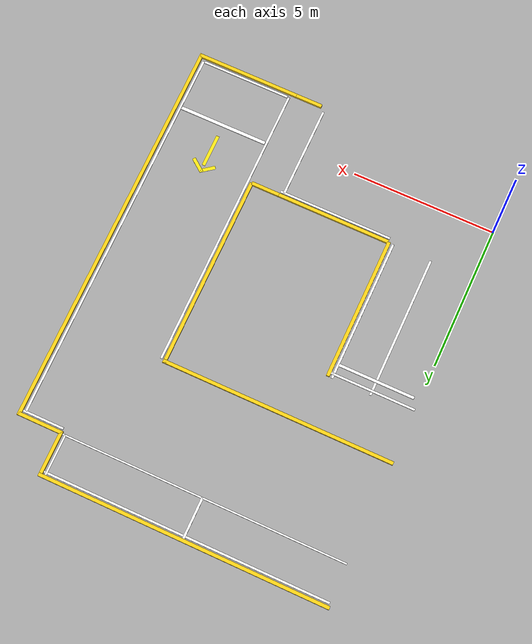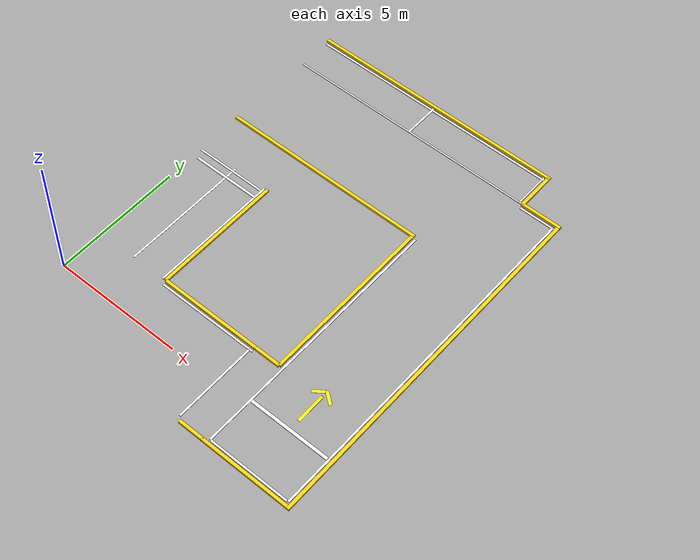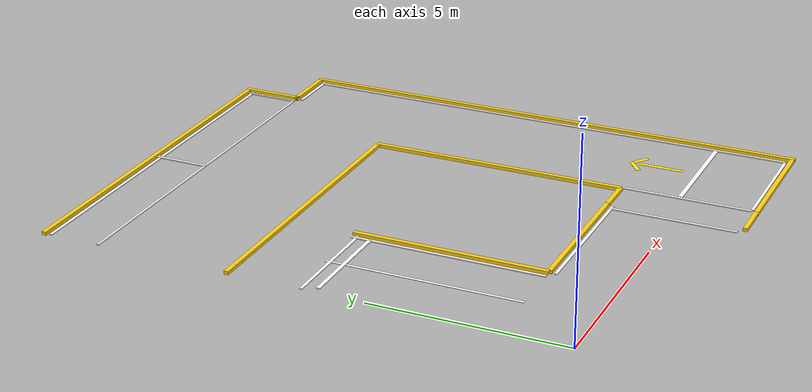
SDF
<sdf version="1.10">
 <world name="t_parking_exam">
  <model name="main_lane_upper_east_boundary">
   <static>true</static>
   <pose>5.015 1.75 0.045 0 0 0</pose>
   <link name="boundary_link">
    <collision name="boundary_collision"><geometry><box><size>3.97 0.12 0.090</size></box></geometry></collision>
    <visual name="boundary_visual">
     <geometry><box><size>3.97 0.12 0.090</size></box></geometry>
     <material><ambient>0.95 0.75 0.05 1</ambient><diffuse>1.0 0.82 0.08 1</diffuse></material>
    </visual>
   </link>
  </model>
  <model name="combined_connector_upper_boundary">
   <static>true</static>
   <pose>7.5 1.75 0.045 0 0 0</pose>
   <link name="boundary_link">
    <collision name="boundary_collision"><geometry><box><size>1.0 0.12 0.090</size></box></geometry></collision>
    <visual name="boundary_visual">
     <geometry><box><size>1.0 0.12 0.090</size></box></geometry>
     <material><ambient>0.95 0.75 0.05 1</ambient><diffuse>1 0.82 0.08 1</diffuse></material>
    </visual>
   </link>
  </model>
  <model name="combined_connector_lower_boundary">
   <static>true</static>
   <pose>7.5 -1.75 0.045 0 0 0</pose>
   <link name="boundary_link">
    <collision name="boundary_collision"><geometry><box><size>1.0 0.12 0.090</size></box></geometry></collision>
    <visual name="boundary_visual">
     <geometry><box><size>1.0 0.12 0.090</size></box></geometry>
     <material><ambient>0.95 0.75 0.05 1</ambient><diffuse>1 0.82 0.08 1</diffuse></material>
    </visual>
   </link>
  </model>
  <model name="parking_bay_east_boundary">
   <static>true</static>
   <pose>3.0 4.25 0.045 0 0 0</pose>
   <link name="boundary_link">
    <collision name="boundary_collision"><geometry><box><size>0.12 5.0 0.090</size></box></geometry></collision>
    <visual name="boundary_visual">
     <geometry><box><size>0.12 5.0 0.090</size></box></geometry>
     <material><ambient>0.95 0.75 0.05 1</ambient><diffuse>1.0 0.82 0.08 1</diffuse></material>
    </visual>
   </link>
  </model>
  <model name="parallel_vertical_lane_left_boundary">
   <static>true</static>
   <pose>8.0 5.155 0.045 0 0 0</pose>
   <link name="boundary_link">
    <collision name="boundary_collision"><geometry><box><size>0.12 6.81 0.090</size></box></geometry></collision>
    <visual name="boundary_visual">
     <geometry><box><size>0.12 6.81 0.090</size></box></geometry>
     <material><ambient>0.95 0.75 0.05 1</ambient><diffuse>1 0.82 0.08 1</diffuse></material>
    </visual>
   </link>
  </model>
  <model name="parallel_vertical_lane_right_boundary">
   <static>true</static>
   <pose>11.5 5.125 0.045 0 0 0</pose>
   <link name="boundary_link">
    <collision name="boundary_collision"><geometry><box><size>0.12 13.87 0.090</size></box></geometry></collision>
    <visual name="boundary_visual">
     <geometry><box><size>0.12 13.87 0.090</size></box></geometry>
     <material><ambient>0.95 0.75 0.05 1</ambient><diffuse>1 0.82 0.08 1</diffuse></material>
    </visual>
   </link>
  </model>
  <model name="parallel_start_zone_boundary">
   <static>true</static>
   <pose>9.75 -1.75 0.045 0 0 0</pose>
   <link name="boundary_link">
    <collision name="boundary_collision"><geometry><box><size>3.62 0.12 0.090</size></box></geometry></collision>
    <visual name="boundary_visual">
     <geometry><box><size>3.62 0.12 0.090</size></box></geometry>
     <material><ambient>0.95 0.75 0.05 1</ambient><diffuse>1 0.82 0.08 1</diffuse></material>
    </visual>
   </link>
  </model>
  <model name="parallel_upper_lane_bottom_boundary">
   <static>true</static>
   <pose>4.0 8.5 0.045 0 0 0</pose>
   <link name="boundary_link">
    <collision name="boundary_collision"><geometry><box><size>8.12 0.12 0.090</size></box></geometry></collision>
    <visual name="boundary_visual">
     <geometry><box><size>8.12 0.12 0.090</size></box></geometry>
     <material><ambient>0.95 0.75 0.05 1</ambient><diffuse>1 0.82 0.08 1</diffuse></material>
    </visual>
   </link>
  </model>
  <model name="parallel_upper_lane_top_east_boundary">
   <static>true</static>
   <pose>10.75 12.0 0.045 0 0 0</pose>
   <link name="boundary_link">
    <collision name="boundary_collision"><geometry><box><size>1.62 0.12 0.090</size></box></geometry></collision>
    <visual name="boundary_visual">
     <geometry><box><size>1.62 0.12 0.090</size></box></geometry>
     <material><ambient>0.95 0.75 0.05 1</ambient><diffuse>1 0.82 0.08 1</diffuse></material>
    </visual>
   </link>
  </model>
  <model name="parallel_slots_outer_boundary">
   <static>true</static>
   <pose>5.0 13.5 0.045 0 0 0</pose>
   <link name="boundary_link">
    <collision name="boundary_collision"><geometry><box><size>10.12 0.12 0.090</size></box></geometry></collision>
    <visual name="boundary_visual">
     <geometry><box><size>10.12 0.12 0.090</size></box></geometry>
     <material><ambient>0.95 0.75 0.05 1</ambient><diffuse>1 0.82 0.08 1</diffuse></material>
    </visual>
   </link>
  </model>
  <model name="parallel_slots_east_end_boundary">
   <static>true</static>
   <pose>10.0 12.75 0.045 0 0 0</pose>
   <link name="boundary_link">
    <collision name="boundary_collision"><geometry><box><size>0.12 1.62 0.090</size></box></geometry></collision>
    <visual name="boundary_visual">
     <geometry><box><size>0.12 1.62 0.090</size></box></geometry>
     <material><ambient>0.95 0.75 0.05 1</ambient><diffuse>1 0.82 0.08 1</diffuse></material>
    </visual>
   </link>
  </model>
  <model name="parallel_upper_slot_divider">
   <static>true</static>
   <pose>5.0 12.75 0.016 0 0 0</pose>
   <link name="paint_link">
    <visual name="paint_visual">
     <geometry><box><size>0.08 1.50 0.028</size></box></geometry>
     <material><ambient>1 1 1 1</ambient><diffuse>1 1 1 1</diffuse></material>
    </visual>
   </link>
  </model>
  <model name="parallel_slots_lane_edge_paint">
   <static>true</static>
   <pose>5.0 12.02 0.016 0 0 0</pose>
   <link name="paint_link">
    <visual name="paint_visual">
     <geometry><box><size>10.0 0.06 0.028</size></box></geometry>
     <material><ambient>1 1 1 1</ambient><diffuse>1 1 1 1</diffuse></material>
    </visual>
   </link>
  </model>
  <model name="parallel_slot_2_east_paint">
   <static>true</static>
   <pose>9.85 12.75 0.016 0 0 0</pose>
   <link name="paint_link">
    <visual name="paint_visual">
     <geometry><box><size>0.06 1.50 0.028</size></box></geometry>
     <material><ambient>1 1 1 1</ambient><diffuse>1 1 1 1</diffuse></material>
    </visual>
   </link>
  </model>
  <model name="parallel_start_stop_line">
   <static>true</static>
   <pose>9.75 0.25 0.016 0 0 0</pose>
   <link name="paint_link">
    <visual name="paint_visual">
     <geometry><box><size>3.10 0.12 0.028</size></box></geometry>
     <material><ambient>1 1 1 1</ambient><diffuse>1 1 1 1</diffuse><emissive>0.2 0.2 0.2 1</emissive></material>
    </visual>
   </link>
  </model>
  <model name="parallel_start_arrow_shaft">
   <static>true</static>
   <pose>9.75 1.25 0.0035 0 0 0</pose>
   <link name="paint_link">
    <visual name="paint_visual">
     <geometry><box><size>0.12 1.15 0.003</size></box></geometry>
     <material><ambient>0.95 0.85 0.05 1</ambient><diffuse>1 0.90 0.08 1</diffuse></material>
    </visual>
   </link>
  </model>
  <model name="parallel_start_arrow_left">
   <static>true</static>
   <pose>9.57 1.90 0.0035 0 0 0.65</pose>
   <link name="paint_link">
    <visual name="paint_visual">
     <geometry><box><size>0.55 0.12 0.003</size></box></geometry>
     <material><ambient>0.95 0.85 0.05 1</ambient><diffuse>1 0.90 0.08 1</diffuse></material>
    </visual>
   </link>
  </model>
  <model name="parallel_start_arrow_right">
   <static>true</static>
   <pose>9.93 1.90 0.0035 0 0 -0.65</pose>
   <link name="paint_link">
    <visual name="paint_visual">
     <geometry><box><size>0.55 0.12 0.003</size></box></geometry>
     <material><ambient>0.95 0.85 0.05 1</ambient><diffuse>1 0.90 0.08 1</diffuse></material>
    </visual>
   </link>
  </model>
  <model name="main_lane_east_end_inner_white">
   <static>true</static>
   <pose>6.87 0 0.014 0 0 0</pose>
   <link name="paint_link">
    <visual name="paint_visual">
     <geometry><box><size>0.08 3.20 0.024</size></box></geometry>
     <material><ambient>1 1 1 1</ambient><diffuse>1 1 1 1</diffuse></material>
    </visual>
   </link>
  </model>
  <model name="parallel_start_inner_white">
   <static>true</static>
   <pose>9.75 -1.60 0.014 0 0 0</pose>
   <link name="paint_link">
    <visual name="paint_visual">
     <geometry><box><size>3.10 0.08 0.024</size></box></geometry>
     <material><ambient>1 1 1 1</ambient><diffuse>1 1 1 1</diffuse></material>
    </visual>
   </link>
  </model>
  <model name="parallel_vertical_left_inner_white">
   <static>true</static>
   <pose>8.15 3.425 0.014 0 0 0</pose>
   <link name="paint_link">
    <visual name="paint_visual">
     <geometry><box><size>0.08 10.05 0.024</size></box></geometry>
     <material><ambient>1 1 1 1</ambient><diffuse>1 1 1 1</diffuse></material>
    </visual>
   </link>
  </model>
  <model name="parallel_vertical_right_inner_white">
   <static>true</static>
   <pose>11.35 5.125 0.014 0 0 0</pose>
   <link name="paint_link">
    <visual name="paint_visual">
     <geometry><box><size>0.08 13.45 0.024</size></box></geometry>
     <material><ambient>1 1 1 1</ambient><diffuse>1 1 1 1</diffuse></material>
    </visual>
   </link>
  </model>
  <model name="parallel_upper_east_inner_white">
   <static>true</static>
   <pose>10.75 11.85 0.014 0 0 0</pose>
   <link name="paint_link">
    <visual name="paint_visual">
     <geometry><box><size>1.50 0.08 0.024</size></box></geometry>
     <material><ambient>1 1 1 1</ambient><diffuse>1 1 1 1</diffuse></material>
    </visual>
   </link>
  </model>
  <model name="parallel_slots_outer_inner_white">
   <static>true</static>
   <pose>5.0 13.35 0.014 0 0 0</pose>
   <link name="paint_link">
    <visual name="paint_visual">
     <geometry><box><size>10.0 0.08 0.024</size></box></geometry>
     <material><ambient>1 1 1 1</ambient><diffuse>1 1 1 1</diffuse></material>
    </visual>
   </link>
  </model>
  <model name="main_left_paint_east">
   <static>true</static>
   <pose>5.015 1.60 0.014 0 0 0</pose>
   <link name="paint_link">
    <visual name="paint_visual">
     <geometry><box><size>3.97 0.08 0.024</size></box></geometry>
     <material>
      <ambient>0.95 0.95 0.95 1</ambient>
      <diffuse>1 1 1 1</diffuse>
      <emissive>0.15 0.15 0.15 1</emissive>
     </material>
    </visual>
   </link>
  </model>
  <model name="parking_bay_east_paint">
   <static>true</static>
   <pose>2.85 4.25 0.014 0 0 0</pose>
   <link name="paint_link">
    <visual name="paint_visual">
     <geometry><box><size>0.08 5.0 0.024</size></box></geometry>
     <material>
      <ambient>0.95 0.95 0.95 1</ambient>
      <diffuse>1 1 1 1</diffuse>
      <emissive>0.15 0.15 0.15 1</emissive>
     </material>
    </visual>
   </link>
  </model>
  <model name="parking_bay_inner_paint">
   <static>true</static>
   <pose>1.5 6.60 0.014 0 0 0</pose>
   <link name="paint_link">
    <visual name="paint_visual">
     <geometry><box><size>3.0 0.08 0.024</size></box></geometry>
     <material>
      <ambient>0.95 0.95 0.95 1</ambient>
      <diffuse>1 1 1 1</diffuse>
      <emissive>0.15 0.15 0.15 1</emissive>
     </material>
    </visual>
   </link>
  </model>
  <model name="parking_bay_center_divider">
   <static>true</static>
   <pose>1.5 4.25 0.006 0 0 0</pose>
   <link name="paint_link">
    <visual name="paint_visual">
     <geometry><box><size>0.08 5.0 0.008</size></box></geometry>
     <material>
      <ambient>0.95 0.95 0.95 1</ambient>
      <diffuse>1 1 1 1</diffuse>
      <emissive>0.15 0.15 0.15 1</emissive>
     </material>
    </visual>
   </link>
  </model>
  <model name="parking_confirmation_line">
   <static>true</static>
   <pose>1.5 6.25 0.016 0 0 0</pose>
   <link name="paint_link">
    <visual name="paint_visual">
     <geometry><box><size>2.65 0.10 0.028</size></box></geometry>
     <material><ambient>1 1 1 1</ambient><diffuse>1 1 1 1</diffuse><emissive>0.2 0.2 0.2 1</emissive></material>
    </visual>
   </link>
  </model>
 </world>
</sdf>
